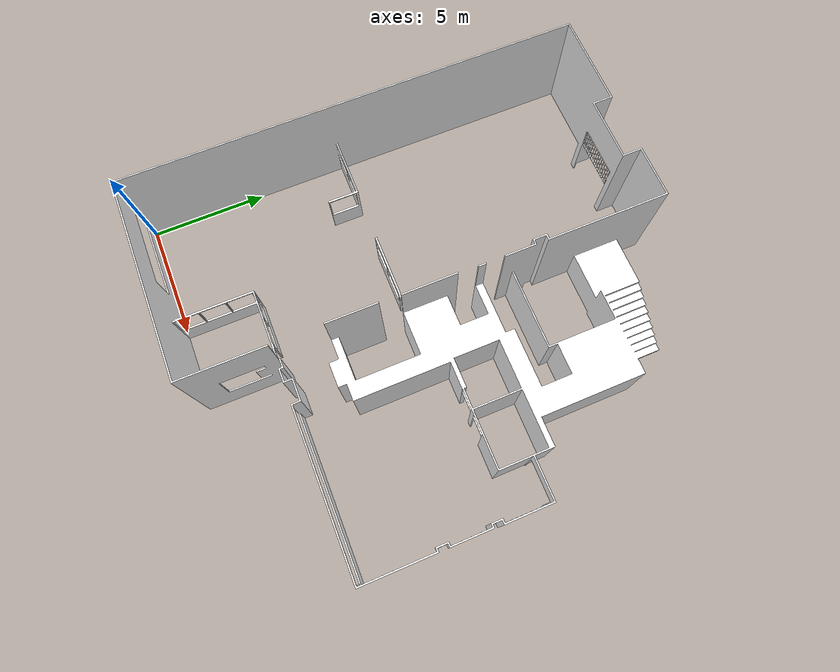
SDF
<?xml version="1.0" ?>
<sdf version="1.5">
  <model name="labfabex">

    <!-- Model Link  -->
    <link name="base">
      <pose>0 0 0 0 0 3.14159</pose>

      <collision name="collision">
        <geometry>
          <mesh>
            <uri>model://labfabex/meshes/labfabex_walls.dae</uri>
          </mesh>
        </geometry>
      </collision>

      <visual name="visual">
        <geometry>
          <mesh>
            <uri>model://labfabex/meshes/labfabex_walls.dae</uri>
          </mesh>
        </geometry>

        <material>
          <script>
            <uri>model://labfabex/materials/textures</uri>
            <uri>model://labfabex/materials/scripts</uri>
            <name>labfabex/texture</name>
          </script>

          <shader type = 'vertex'>
            <normal_map>__default__</normal_map>
          </shader>
          <ambient>1 1 1 1</ambient>
          <diffuse>1 1 1 1</diffuse>
          <specular>1 1 1 1</specular>
          <emissive>0 0 0 1</emissive>
        </material>

      </visual>

    </link>
  </model>
</sdf>
